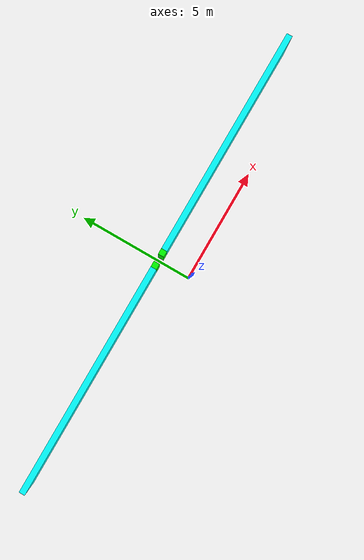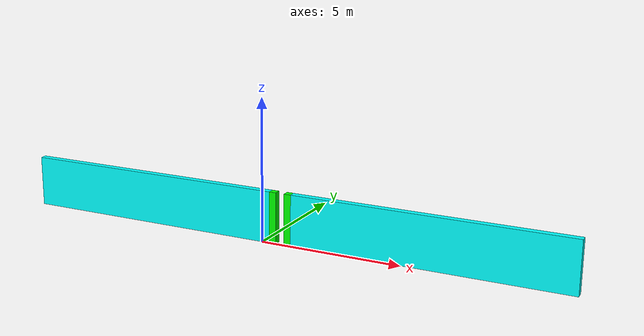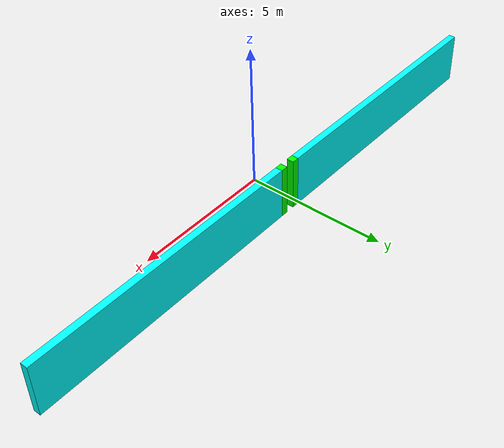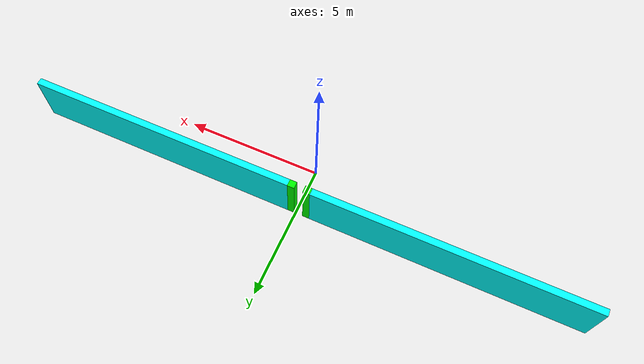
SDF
<?xml version='1.0'?>
<sdf version="1.4">
  <model name="folding_drone_experiment_obstacle">
    <!-- Current propeller size 140 mm wide - becomes drone width -->
    <!-- normal drone size a 442 mm wide -->

    <static>true</static>
    <link name="link1">
      <pose>0.28575 1.4 0.4398 0 0 0</pose>
      <collision name="collision1">
        <geometry>
          <box>
            <size>0.254 0.254 1.8796</size>
          </box>
        </geometry>
      </collision>
      <visual name="visual1">
        <geometry>
          <box>
            <size>0.254 0.254 1.8796</size>
          </box>
        </geometry>
        <material>
          <ambient>0 1 0 1.0</ambient>
          <diffuse>0 1 0 1.0</diffuse>
        </material>
      </visual>
    </link>
    <link name="link2">
      <pose>-0.28575 1.4 0.4398 0 0 0</pose>
      <collision name="collision2">
        <geometry>
          <box>
            <size>0.254 0.254 1.8796</size>
          </box>
        </geometry>
      </collision>
      <visual name="visual2">
        <geometry>
          <box>
            <size>0.254 0.254 1.8796</size>
          </box>
        </geometry>
        <material>
          <ambient>0 1 0 1.0</ambient>
          <diffuse>0 1 0 1.0</diffuse>
        </material>
      </visual>
    </link>
    <link name="link5">
      <pose>5.41275 1.4 0.4398 0 0 0</pose>
      <collision name="collision5">
        <geometry>
          <box>
            <size>10.0 0.254 1.8796</size>
          </box>
        </geometry>
      </collision>
      <visual name="visual5">
        <geometry>
          <box>
            <size>10.0 0.254 1.8796</size>
          </box>
        </geometry>
        <material>
          <ambient>0 1 1 1.0</ambient>
          <diffuse>0 1 1 1.0</diffuse>
        </material>
      </visual>
    </link>
    <link name="link6">
      <pose>-5.41275 1.4 0.4398 0 0 0</pose>
      <collision name="collision6">
        <geometry>
          <box>
            <size>10.0 0.254 1.8796</size>
          </box>
        </geometry>
      </collision>
      <visual name="visual6">
        <geometry>
          <box>
            <size>10.0 0.254 1.8796</size>
          </box>
        </geometry>
        <material>
          <ambient>0 1 1 1.0</ambient>
          <diffuse>0 1 1 1.0</diffuse>
        </material>
      </visual>
    </link>
  </model>
</sdf>
